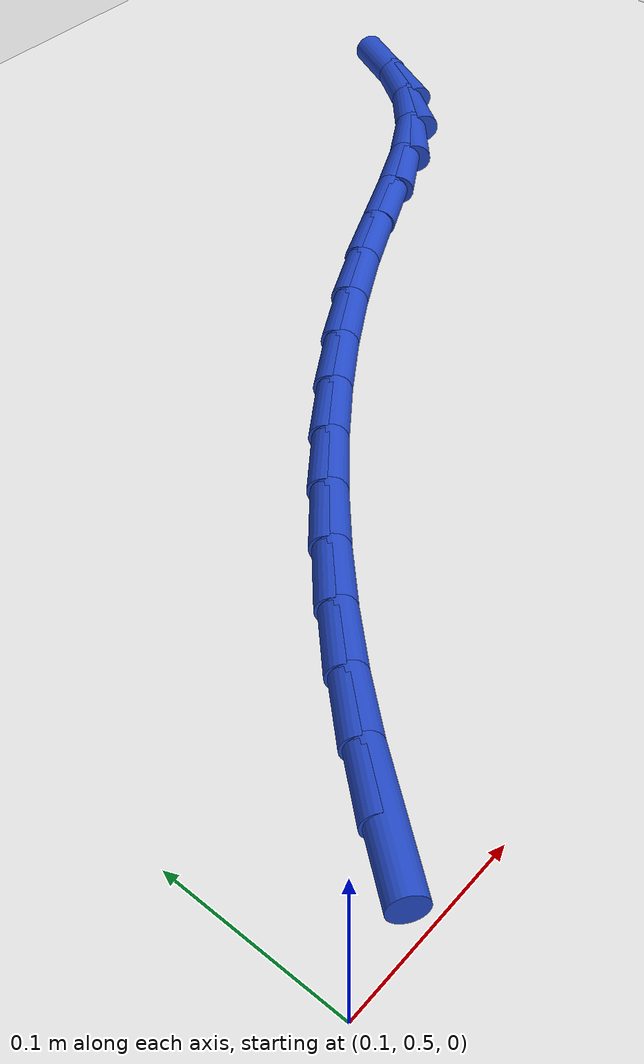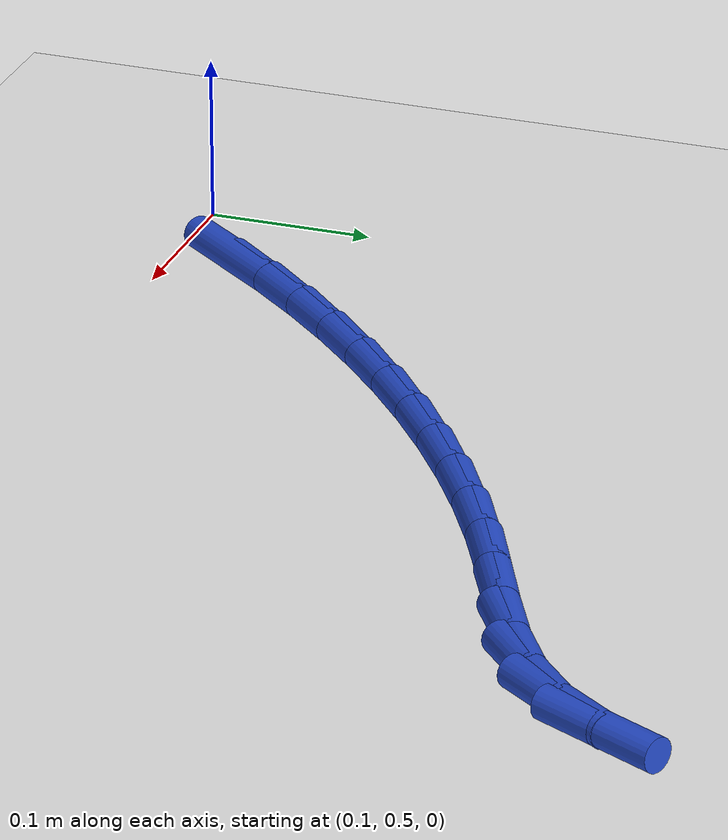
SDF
<sdf version="1.6">
 <world name="default">
  <model name="ground_plane">
   <static>1</static>
   <link name="link">
    <collision name="collision">
     <geometry><plane><normal>0 0 1</normal><size>100 100</size></plane></geometry>
     <surface><friction><ode><mu>100</mu><mu2>50</mu2></ode></friction></surface>
    </collision>
    <visual name="visual">
     <cast_shadows>0</cast_shadows>
     <geometry><plane><normal>0 0 1</normal><size>100 100</size></plane></geometry>
     <material>
      <script><uri>file://media/materials/scripts/gazebo.material</uri><name>Gazebo/WhiteGlow</name></script>
     </material>
    </visual>
   </link>
  </model>
  <model name="line">
   <link name="link_15">
    <pose>0.17086043889677272 0.5404172452633939 0.01 0 1.57 0.915560138161888</pose>
    <collision name="collision">
     <geometry><cylinder><radius>0.01</radius><length>0.08</length></cylinder></geometry>
    </collision>
    <visual name="visual">
     <material>
      <script><name>Gazebo/Blue</name><uri>file://media/materials/scripts/gazebo.material</uri></script>
     </material>
     <geometry><cylinder><radius>0.01</radius><length>0.08</length></cylinder></geometry>
    </visual>
   </link>
   <link name="link_16">
    <pose>0.1945878665153811 0.5712922431179818 0.01 0 1.57 0.8722464329653674</pose>
    <collision name="collision">
     <geometry><cylinder><radius>0.01</radius><length>0.08</length></cylinder></geometry>
    </collision>
    <visual name="visual">
     <material>
      <script><name>Gazebo/Blue</name><uri>file://media/materials/scripts/gazebo.material</uri></script>
     </material>
     <geometry><cylinder><radius>0.01</radius><length>0.08</length></cylinder></geometry>
    </visual>
   </link>
   <link name="link_17">
    <pose>0.21967832332092546 0.6011685026788347 0.01 0 1.57 0.8288993104392414</pose>
    <collision name="collision">
     <geometry><cylinder><radius>0.01</radius><length>0.08</length></cylinder></geometry>
    </collision>
    <visual name="visual">
     <material>
      <script><name>Gazebo/Blue</name><uri>file://media/materials/scripts/gazebo.material</uri></script>
     </material>
     <geometry><cylinder><radius>0.01</radius><length>0.08</length></cylinder></geometry>
    </visual>
   </link>
   <link name="link_18">
    <pose>0.24609097760844967 0.6299852143672211 0.01 0 1.57 0.7854403037994284</pose>
    <collision name="collision">
     <geometry><cylinder><radius>0.01</radius><length>0.08</length></cylinder></geometry>
    </collision>
    <visual name="visual">
     <material>
      <script><name>Gazebo/Blue</name><uri>file://media/materials/scripts/gazebo.material</uri></script>
     </material>
     <geometry><cylinder><radius>0.01</radius><length>0.08</length></cylinder></geometry>
    </visual>
   </link>
   <link name="link_19">
    <pose>0.2737849976729976 0.6576815686044093 0.01 0 1.57 0.7417941113048515</pose>
    <collision name="collision">
     <geometry><cylinder><radius>0.01</radius><length>0.08</length></cylinder></geometry>
    </collision>
    <visual name="visual">
     <material>
      <script><name>Gazebo/Blue</name><uri>file://media/materials/scripts/gazebo.material</uri></script>
     </material>
     <geometry><cylinder><radius>0.01</radius><length>0.08</length></cylinder></geometry>
    </visual>
   </link>
   <link name="link_20">
    <pose>0.3027195518096132 0.6841967558116674 0.01 0 1.57 0.6978895372310598</pose>
    <collision name="collision">
     <geometry><cylinder><radius>0.01</radius><length>0.08</length></cylinder></geometry>
    </collision>
    <visual name="visual">
     <material>
      <script><name>Gazebo/Blue</name><uri>file://media/materials/scripts/gazebo.material</uri></script>
     </material>
     <geometry><cylinder><radius>0.01</radius><length>0.08</length></cylinder></geometry>
    </visual>
   </link>
   <link name="link_21">
    <pose>0.3328538083133404 0.7094699664102638 0.01 0 1.57 0.6536604797937026</pose>
    <collision name="collision">
     <geometry><cylinder><radius>0.01</radius><length>0.08</length></cylinder></geometry>
    </collision>
    <visual name="visual">
     <material>
      <script><name>Gazebo/Blue</name><uri>file://media/materials/scripts/gazebo.material</uri></script>
     </material>
     <geometry><cylinder><radius>0.01</radius><length>0.08</length></cylinder></geometry>
    </visual>
   </link>
   <link name="link_22">
    <pose>0.36414693547922306 0.7334403908214668 0.01 0 1.57 0.6090469765927368</pose>
    <collision name="collision">
     <geometry><cylinder><radius>0.01</radius><length>0.08</length></cylinder></geometry>
    </collision>
    <visual name="visual">
     <material>
      <script><name>Gazebo/Blue</name><uri>file://media/materials/scripts/gazebo.material</uri></script>
     </material>
     <geometry><cylinder><radius>0.01</radius><length>0.08</length></cylinder></geometry>
    </visual>
   </link>
   <link name="link_23">
    <pose>0.396558101602305 0.7560472194665443 0.01 0 1.57 0.5639963106220793</pose>
    <collision name="collision">
     <geometry><cylinder><radius>0.01</radius><length>0.08</length></cylinder></geometry>
    </collision>
    <visual name="visual">
     <material>
      <script><name>Gazebo/Blue</name><uri>file://media/materials/scripts/gazebo.material</uri></script>
     </material>
     <geometry><cylinder><radius>0.01</radius><length>0.08</length></cylinder></geometry>
    </visual>
   </link>
   <link name="link_24">
    <pose>0.43004647497763004 0.7772296427667649 0.01 0 1.57 0.5184641707763226</pose>
    <collision name="collision">
     <geometry><cylinder><radius>0.01</radius><length>0.08</length></cylinder></geometry>
    </collision>
    <visual name="visual">
     <material>
      <script><name>Gazebo/Blue</name><uri>file://media/materials/scripts/gazebo.material</uri></script>
     </material>
     <geometry><cylinder><radius>0.01</radius><length>0.08</length></cylinder></geometry>
    </visual>
   </link>
   <link name="link_25">
    <pose>0.46457122390024225 0.7969268511433965 0.01 0 1.57 0.4724509050586902</pose>
    <collision name="collision">
     <geometry><cylinder><radius>0.01</radius><length>0.08</length></cylinder></geometry>
    </collision>
    <visual name="visual">
     <material>
      <script><name>Gazebo/Blue</name><uri>file://media/materials/scripts/gazebo.material</uri></script>
     </material>
     <geometry><cylinder><radius>0.01</radius><length>0.08</length></cylinder></geometry>
    </visual>
   </link>
   <link name="link_26">
    <pose>0.5000904836647061 0.8150790774380501 0.01 0 1.57 0.4419052265983376</pose>
    <collision name="collision">
     <geometry><cylinder><radius>0.01</radius><length>0.08</length></cylinder></geometry>
    </collision>
    <visual name="visual">
     <material>
      <script><name>Gazebo/Blue</name><uri>file://media/materials/scripts/gazebo.material</uri></script>
     </material>
     <geometry><cylinder><radius>0.01</radius><length>0.08</length></cylinder></geometry>
    </visual>
   </link>
   <link name="link_27">
    <pose>0.5360848990232084 0.8321083992394709 0.01 0 1.57 0.46861760996024854</pose>
    <collision name="collision">
     <geometry><cylinder><radius>0.01</radius><length>0.08</length></cylinder></geometry>
    </collision>
    <visual name="visual">
     <material>
      <script><name>Gazebo/Blue</name><uri>file://media/materials/scripts/gazebo.material</uri></script>
     </material>
     <geometry><cylinder><radius>0.01</radius><length>0.08</length></cylinder></geometry>
    </visual>
   </link>
   <link name="link_28">
    <pose>0.5708007360729581 0.8496825290089063 0.01 0 1.57 0.5655586599083128</pose>
    <collision name="collision">
     <geometry><cylinder><radius>0.01</radius><length>0.08</length></cylinder></geometry>
    </collision>
    <visual name="visual">
     <material>
      <script><name>Gazebo/Blue</name><uri>file://media/materials/scripts/gazebo.material</uri></script>
     </material>
     <geometry><cylinder><radius>0.01</radius><length>0.08</length></cylinder></geometry>
    </visual>
   </link>
   <link name="link_29">
    <pose>0.6022874500627845 0.8696677847611255 0.01 0 1.57 0.7439870550854325</pose>
    <collision name="collision">
     <geometry><cylinder><radius>0.01</radius><length>0.08</length></cylinder></geometry>
    </collision>
    <visual name="visual">
     <material>
      <script><name>Gazebo/Blue</name><uri>file://media/materials/scripts/gazebo.material</uri></script>
     </material>
     <geometry><cylinder><radius>0.01</radius><length>0.08</length></cylinder></geometry>
    </visual>
   </link>
   <link name="link_30">
    <pose>0.6286216127380578 0.8939064717160263 0.01 0 1.57 0.9569951795448739</pose>
    <collision name="collision">
     <geometry><cylinder><radius>0.01</radius><length>0.08</length></cylinder></geometry>
    </collision>
    <visual name="visual">
     <material>
      <script><name>Gazebo/Blue</name><uri>file://media/materials/scripts/gazebo.material</uri></script>
     </material>
     <geometry><cylinder><radius>0.01</radius><length>0.08</length></cylinder></geometry>
    </visual>
   </link>
   <link name="link_31">
    <pose>0.6491823064881527 0.9230874672947679 0.01 0 1.57 1.1209489093276608</pose>
    <collision name="collision">
     <geometry><cylinder><radius>0.01</radius><length>0.08</length></cylinder></geometry>
    </collision>
    <visual name="visual">
     <material>
      <script><name>Gazebo/Blue</name><uri>file://media/materials/scripts/gazebo.material</uri></script>
     </material>
     <geometry><cylinder><radius>0.01</radius><length>0.08</length></cylinder></geometry>
    </visual>
   </link>
  </model>
 </world>
</sdf>
